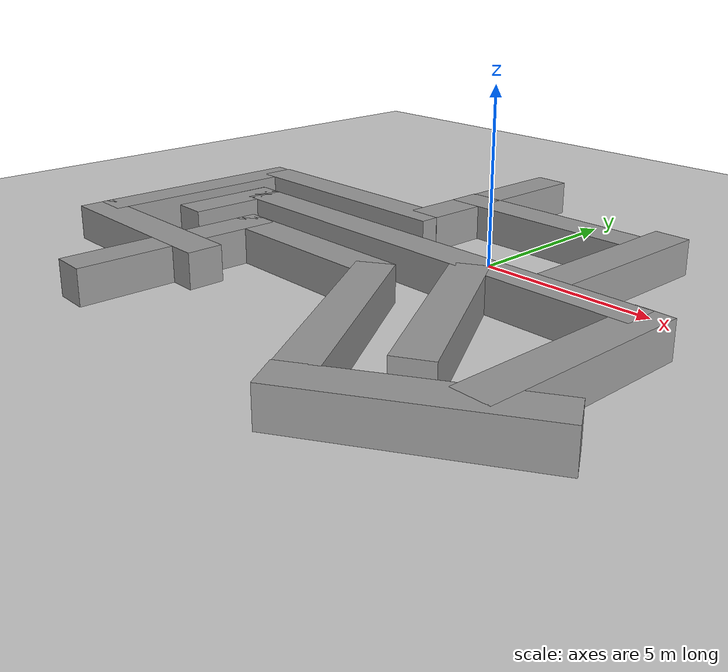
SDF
<sdf version="1.7">
 <world name="default">
  <plugin name="gazebo_ros_state" filename="libgazebo_ros_state.so"/>
  <light name="sun" type="directional">
   <pose>0 0 10 0 -0 0</pose>
   <diffuse>0.8 0.8 0.8 1</diffuse>
   <specular>0.2 0.2 0.2 1</specular>
   <attenuation>
    <range>1000</range>
    <constant>0.9</constant>
    <linear>0.01</linear>
    <quadratic>0.001</quadratic>
   </attenuation>
   <direction>-0.5 0.1 -0.9</direction>
   <spot><inner_angle>0</inner_angle><outer_angle>0</outer_angle><falloff>0</falloff></spot>
  </light>
  <model name="ground_plane">
   <static>1</static>
   <link name="link">
    <collision name="collision">
     <geometry><plane><normal>0 0 1</normal><size>100 100</size></plane></geometry>
     <surface>
      <contact><collide_bitmask>65535</collide_bitmask></contact>
      <friction><ode><mu>100</mu><mu2>50</mu2></ode></friction>
     </surface>
    </collision>
    <visual name="visual">
     <cast_shadows>0</cast_shadows>
     <geometry><plane><normal>0 0 1</normal><size>100 100</size></plane></geometry>
     <material>
      <script><uri>file://media/materials/scripts/gazebo.material</uri><name>Gazebo/Grey</name></script>
     </material>
    </visual>
   </link>
  </model>
  <gravity>0 0 -9.8</gravity>
  <magnetic_field>6e-06 2.3e-05 -4.2e-05</magnetic_field>
  <atmosphere type="adiabatic"/>
  <physics type="ode">
   <max_step_size>0.001</max_step_size>
   <real_time_factor>1</real_time_factor>
   <real_time_update_rate>1000</real_time_update_rate>
  </physics>
  <scene><ambient>0.4 0.4 0.4 1</ambient><background>0.7 0.7 0.7 1</background><shadows>1</shadows></scene>
  <audio><device>default</device></audio>
  <spherical_coordinates>
   <surface_model>EARTH_WGS84</surface_model>
   <latitude_deg>0</latitude_deg>
   <longitude_deg>0</longitude_deg>
   <elevation>0</elevation>
   <heading_deg>0</heading_deg>
  </spherical_coordinates>
  <model name="unit_box_3">
   <pose>-0.941178 -2.21194 0.5 0 0 -1e-06</pose>
   <link name="link">
    <inertial>
     <mass>1</mass>
     <inertia>
      <ixx>0.166667</ixx>
      <ixy>0</ixy>
      <ixz>0</ixz>
      <iyy>0.166667</iyy>
      <iyz>0</iyz>
      <izz>0.166667</izz>
     </inertia>
    </inertial>
    <collision name="collision"><geometry><box><size>13.9991 1 1</size></box></geometry></collision>
    <visual name="visual">
     <geometry><box><size>13.9991 1 1</size></box></geometry>
     <material>
      <script><name>Gazebo/Grey</name><uri>file://media/materials/scripts/gazebo.material</uri></script>
     </material>
    </visual>
    <kinematic>1</kinematic>
   </link>
  </model>
  <model name="unit_box_3_clone">
   <pose>-2.77189 -4.2361 0.5 0 0 -1e-06</pose>
   <link name="link">
    <inertial>
     <mass>1</mass>
     <inertia>
      <ixx>0.166667</ixx>
      <ixy>0</ixy>
      <ixz>0</ixz>
      <iyy>0.166667</iyy>
      <iyz>0</iyz>
      <izz>0.166667</izz>
     </inertia>
    </inertial>
    <collision name="collision"><geometry><box><size>5.86702 1 1</size></box></geometry></collision>
    <visual name="visual">
     <geometry><box><size>5.86702 1 1</size></box></geometry>
     <material>
      <script><name>Gazebo/Grey</name><uri>file://media/materials/scripts/gazebo.material</uri></script>
     </material>
    </visual>
    <kinematic>1</kinematic>
   </link>
  </model>
  <model name="unit_box_3_clone_clone">
   <pose>5.15637 -8.10045 0.5 0 0 -2.5832</pose>
   <link name="link">
    <inertial>
     <mass>1</mass>
     <inertia>
      <ixx>0.166667</ixx>
      <ixy>0</ixy>
      <ixz>0</ixz>
      <iyy>0.166667</iyy>
      <iyz>0</iyz>
      <izz>0.166667</izz>
     </inertia>
    </inertial>
    <collision name="collision"><geometry><box><size>5.86702 1 1</size></box></geometry></collision>
    <visual name="visual">
     <geometry><box><size>5.86702 1 1</size></box></geometry>
     <material>
      <script><name>Gazebo/Grey</name><uri>file://media/materials/scripts/gazebo.material</uri></script>
     </material>
    </visual>
    <kinematic>1</kinematic>
   </link>
  </model>
  <model name="unit_box_3_clone_clone_0">
   <pose>0.065205 2.13555 0.5 0 0 -1e-06</pose>
   <link name="link">
    <inertial>
     <mass>1</mass>
     <inertia>
      <ixx>0.166667</ixx>
      <ixy>0</ixy>
      <ixz>0</ixz>
      <iyy>0.166667</iyy>
      <iyz>0</iyz>
      <izz>0.166667</izz>
     </inertia>
    </inertial>
    <collision name="collision"><geometry><box><size>5.86702 1 1</size></box></geometry></collision>
    <visual name="visual">
     <geometry><box><size>5.86702 1 1</size></box></geometry>
     <material>
      <script><name>Gazebo/Grey</name><uri>file://media/materials/scripts/gazebo.material</uri></script>
     </material>
    </visual>
    <kinematic>1</kinematic>
   </link>
  </model>
  <model name="unit_box_3_clone_clone_0_clone">
   <pose>-5.59531 -0.149379 0.5 0 0 -1e-06</pose>
   <link name="link">
    <inertial>
     <mass>1</mass>
     <inertia>
      <ixx>0.166667</ixx>
      <ixy>0</ixy>
      <ixz>0</ixz>
      <iyy>0.166667</iyy>
      <iyz>0</iyz>
      <izz>0.166667</izz>
     </inertia>
    </inertial>
    <collision name="collision"><geometry><box><size>7.38012 1 1</size></box></geometry></collision>
    <visual name="visual">
     <geometry><box><size>7.38012 1 1</size></box></geometry>
     <material>
      <script><name>Gazebo/Grey</name><uri>file://media/materials/scripts/gazebo.material</uri></script>
     </material>
    </visual>
    <kinematic>1</kinematic>
   </link>
  </model>
  <model name="unit_box_3_clone_clone_clone">
   <pose>3.44943 0.422597 0.5 0 0 -1.59148</pose>
   <link name="link">
    <inertial>
     <mass>1</mass>
     <inertia>
      <ixx>0.166667</ixx>
      <ixy>0</ixy>
      <ixz>0</ixz>
      <iyy>0.166667</iyy>
      <iyz>0</iyz>
      <izz>0.166667</izz>
     </inertia>
    </inertial>
    <collision name="collision"><geometry><box><size>5.86702 1 1</size></box></geometry></collision>
    <visual name="visual">
     <geometry><box><size>5.86702 1 1</size></box></geometry>
     <material>
      <script><name>Gazebo/Grey</name><uri>file://media/materials/scripts/gazebo.material</uri></script>
     </material>
    </visual>
    <kinematic>1</kinematic>
   </link>
  </model>
  <model name="unit_box_3_clone_clone_clone_clone">
   <pose>-2.33626 2.83792 0.5 0 0 -1.59148</pose>
   <link name="link">
    <inertial>
     <mass>1</mass>
     <inertia>
      <ixx>0.166667</ixx>
      <ixy>0</ixy>
      <ixz>0</ixz>
      <iyy>0.166667</iyy>
      <iyz>0</iyz>
      <izz>0.166667</izz>
     </inertia>
    </inertial>
    <collision name="collision"><geometry><box><size>5.86702 1 1</size></box></geometry></collision>
    <visual name="visual">
     <geometry><box><size>5.86702 1 1</size></box></geometry>
     <material>
      <script><name>Gazebo/Grey</name><uri>file://media/materials/scripts/gazebo.material</uri></script>
     </material>
    </visual>
    <kinematic>1</kinematic>
   </link>
  </model>
  <model name="unit_box_3_clone_clone_clone_clone_clone">
   <pose>-9.31092 -3.01887 0.5 0 0 -1.59148</pose>
   <link name="link">
    <inertial>
     <mass>1</mass>
     <inertia>
      <ixx>0.166667</ixx>
      <ixy>0</ixy>
      <ixz>0</ixz>
      <iyy>0.166667</iyy>
      <iyz>0</iyz>
      <izz>0.166667</izz>
     </inertia>
    </inertial>
    <collision name="collision"><geometry><box><size>6.62451 1 1</size></box></geometry></collision>
    <visual name="visual">
     <geometry><box><size>6.62451 1 1</size></box></geometry>
     <material>
      <script><name>Gazebo/Grey</name><uri>file://media/materials/scripts/gazebo.material</uri></script>
     </material>
    </visual>
    <kinematic>1</kinematic>
   </link>
  </model>
  <model name="unit_box_3_clone_clone_1">
   <pose>-6.93266 -6.5066 0.5 0 0 -1e-06</pose>
   <link name="link">
    <inertial>
     <mass>1</mass>
     <inertia>
      <ixx>0.166667</ixx>
      <ixy>0</ixy>
      <ixz>0</ixz>
      <iyy>0.166667</iyy>
      <iyz>0</iyz>
      <izz>0.166667</izz>
     </inertia>
    </inertial>
    <collision name="collision"><geometry><box><size>5.86702 1 1</size></box></geometry></collision>
    <visual name="visual">
     <geometry><box><size>5.86702 1 1</size></box></geometry>
     <material>
      <script><name>Gazebo/Grey</name><uri>file://media/materials/scripts/gazebo.material</uri></script>
     </material>
    </visual>
    <kinematic>1</kinematic>
   </link>
  </model>
  <model name="unit_box_3_clone_clone_clone_0">
   <pose>-7.44541 -3.24306 0.5 0 0 -1.59148</pose>
   <link name="link">
    <inertial>
     <mass>1</mass>
     <inertia>
      <ixx>0.166667</ixx>
      <ixy>0</ixy>
      <ixz>0</ixz>
      <iyy>0.166667</iyy>
      <iyz>0</iyz>
      <izz>0.166667</izz>
     </inertia>
    </inertial>
    <collision name="collision"><geometry><box><size>3.08422 1 1</size></box></geometry></collision>
    <visual name="visual">
     <geometry><box><size>3.08422 1 1</size></box></geometry>
     <material>
      <script><name>Gazebo/Grey</name><uri>file://media/materials/scripts/gazebo.material</uri></script>
     </material>
    </visual>
    <kinematic>1</kinematic>
   </link>
  </model>
  <model name="unit_box_3_clone_clone_clone_1">
   <pose>-5.2591 -6.6903 0.5 0 0 -1.59148</pose>
   <link name="link">
    <inertial>
     <mass>1</mass>
     <inertia>
      <ixx>0.166667</ixx>
      <ixy>0</ixy>
      <ixz>0</ixz>
      <iyy>0.166667</iyy>
      <iyz>0</iyz>
      <izz>0.166667</izz>
     </inertia>
    </inertial>
    <collision name="collision"><geometry><box><size>5.86702 1 1</size></box></geometry></collision>
    <visual name="visual">
     <geometry><box><size>5.86702 1 1</size></box></geometry>
     <material>
      <script><name>Gazebo/Grey</name><uri>file://media/materials/scripts/gazebo.material</uri></script>
     </material>
    </visual>
    <kinematic>1</kinematic>
   </link>
  </model>
  <model name="unit_box_3_clone_clone_clone_1_clone">
   <pose>2.79698 -4.78761 0.5 0 0 -1.04235</pose>
   <link name="link">
    <inertial>
     <mass>1</mass>
     <inertia>
      <ixx>0.166667</ixx>
      <ixy>0</ixy>
      <ixz>0</ixz>
      <iyy>0.166667</iyy>
      <iyz>0</iyz>
      <izz>0.166667</izz>
     </inertia>
    </inertial>
    <collision name="collision"><geometry><box><size>5.6266 1 1</size></box></geometry></collision>
    <visual name="visual">
     <geometry><box><size>5.6266 1 1</size></box></geometry>
     <material>
      <script><name>Gazebo/Grey</name><uri>file://media/materials/scripts/gazebo.material</uri></script>
     </material>
    </visual>
    <kinematic>1</kinematic>
   </link>
  </model>
  <model name="unit_box_3_clone_clone_clone_1_clone_clone">
   <pose>1.30177 -6.48515 0.5 0 0 -1.01065</pose>
   <link name="link">
    <inertial>
     <mass>1</mass>
     <inertia>
      <ixx>0.166667</ixx>
      <ixy>0</ixy>
      <ixz>0</ixz>
      <iyy>0.166667</iyy>
      <iyz>0</iyz>
      <izz>0.166667</izz>
     </inertia>
    </inertial>
    <collision name="collision"><geometry><box><size>5.86702 1 1</size></box></geometry></collision>
    <visual name="visual">
     <geometry><box><size>5.86702 1 1</size></box></geometry>
     <material>
      <script><name>Gazebo/Grey</name><uri>file://media/materials/scripts/gazebo.material</uri></script>
     </material>
    </visual>
    <kinematic>1</kinematic>
   </link>
  </model>
  <model name="unit_box_3_clone_clone_clone_clone_0">
   <pose>6.02517 -4.63725 0.5 0 0 -1.59148</pose>
   <link name="link">
    <inertial>
     <mass>1</mass>
     <inertia>
      <ixx>0.166667</ixx>
      <ixy>0</ixy>
      <ixz>0</ixz>
      <iyy>0.166667</iyy>
      <iyz>0</iyz>
      <izz>0.166667</izz>
     </inertia>
    </inertial>
    <collision name="collision"><geometry><box><size>5.86702 1 1</size></box></geometry></collision>
    <visual name="visual">
     <geometry><box><size>5.86702 1 1</size></box></geometry>
     <material>
      <script><name>Gazebo/Grey</name><uri>file://media/materials/scripts/gazebo.material</uri></script>
     </material>
    </visual>
    <kinematic>1</kinematic>
   </link>
  </model>
 </world>
</sdf>
